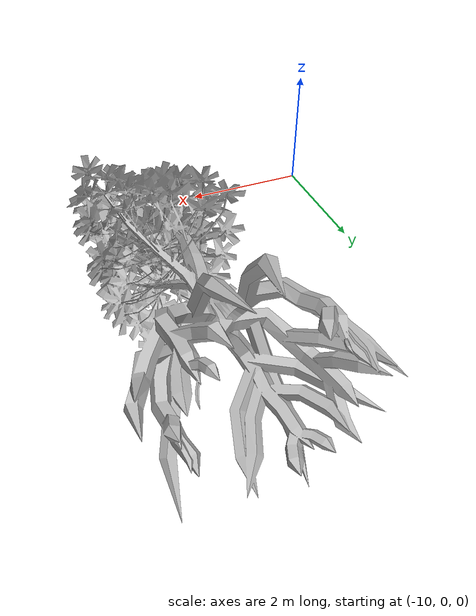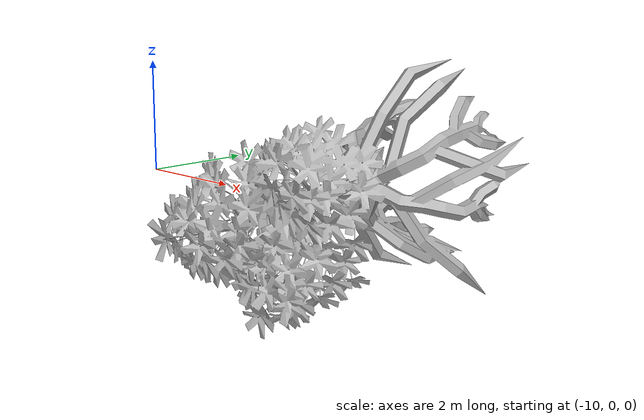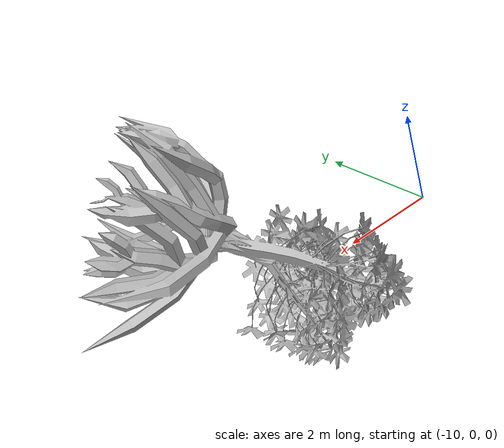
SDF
<?xml version="1.0" ?>
<sdf version="1.10">
  <model name="mangrove_01_7m">
    <pose>0 0 0 0 0 0</pose>
    <static>true</static>
    <link name="visual_only_link">
      <!-- Terrain at (14, 7) is approximately 0.03 m above world zero. -->
      <pose>-7.125 4.650 -0.20 1.5708 0 0</pose>
      <visual name="imported_mangrove_visual"><geometry><mesh><uri>model://mangrove_imported/meshes/Mangrovetree.glb</uri><scale>2.5 2.5 2.5</scale></mesh></geometry></visual>
    </link>
    <!-- The converted GLB mesh is the authoritative visual and collision geometry. -->
    <!-- A mesh collision is used so Gazebo physics and LiDAR can detect the tree shape. -->
    <link name="glb_collision_link">
      <pose>0 0 0.375 0 0 0</pose>
      <collision name="glb_mesh_collision">
        <geometry><cylinder><radius>0.75</radius><length>3.5</length></cylinder></geometry>
      </collision>
    </link>
  </model>
</sdf>
